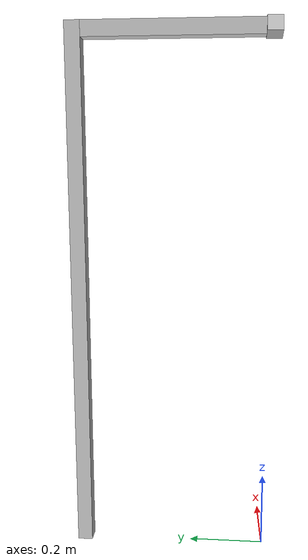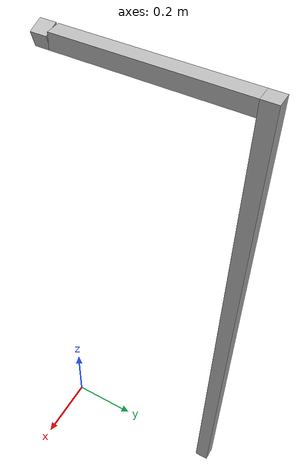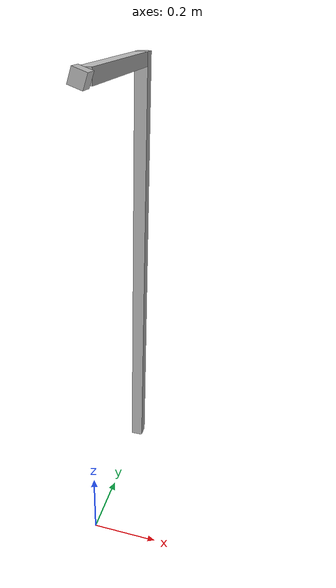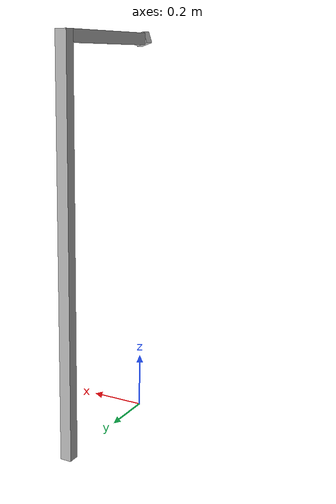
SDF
<?xml version="1.0" ?>
<sdf version="1.4">
	<model name="camera_rack">
		<static>true</static>
		<link name="pole1">
			<pose>0 0.5 0.7 0 0 0</pose>
			<collision name="pole2">
				<pose>0 0 0 0 0 0</pose>
				<geometry>
					<box>
						<size>0.04 0.04 1.4</size>
					</box>
				</geometry>
			</collision>
			<visual name="visual">
				<geometry>
					<box>
						<size>0.04 0.04 1.4</size>
					</box>
				</geometry>
			</visual>
		</link>

		<link name="bar1">
			<pose>0 0.25 1.38 0 0 0</pose>
			<collision name="bar1">
				<pose>0 0 0 0 0 0</pose>
				<geometry>
					<box>
						<size>0.04 0.46 0.04</size>
					</box>
				</geometry>
			</collision>
			<visual name="visual">
				<geometry>
					<box>
						<size>0.04 0.46 0.04</size>
					</box>
				</geometry>
			</visual>
		</link>

		<link name="depth_camera">
			<pose>0 0 1.38 0 1.9 0</pose>
			<collision name="collision">
				<geometry>
					<box>
						<size>0.04 0.04 0.04</size>
					</box>
				</geometry>
			</collision>
			<visual name="visual">
				<geometry>
					<box>
						<size>0.04 0.04 0.04</size>
					</box>
				</geometry>
			</visual>
			<sensor name="DepCamera" type="depth">
				<camera>
					<horizontal_fov>1.0</horizontal_fov>
					<image>
						<width>320</width>
						<height>320</height>
					</image>
					<clip>
						<near>0.1</near>
						<far>1.1</far>
					</clip>
				</camera>
				<always_on>true</always_on>
				<update_rate>200</update_rate>
				<visualize>true</visualize>
				<plugin name='depthCamera' filename='libgazebo_ros_depth_camera.so'>
					<robotNamespace>camera_stand</robotNamespace>
					<focalLength>292.878035</focalLength>
					<alwaysOn>true</alwaysOn>
					<updateRate>30</updateRate>
					<imageTopicName>/DepCamera/image_raw</imageTopicName>
					<depthImageTopicName>/DepCamera/depth/image_raw</depthImageTopicName>
					<cameraInfoTopicName>/DepCamera/depth/camera_info</cameraInfoTopicName>
					<depthImageInfoTopicName>/DepCamera/depth/camera_info</depthImageInfoTopicName>
					<depthImageCameraInfoTopicName>/DepCamera/depth_image_camera_info</depthImageCameraInfoTopicName>
					<pointCloudTopicName>/DepCamera/depth/points</pointCloudTopicName>
					<cameraName>DepCamera</cameraName>
					<frameName>camera_frame</frameName>
				</plugin>
			</sensor>
		</link>
	</model>
</sdf>
